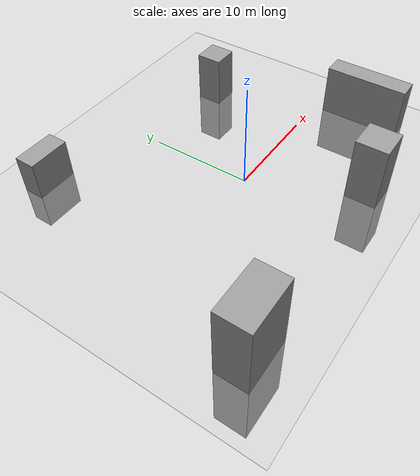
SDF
<?xml version="1.0" ?>
<sdf version="1.6">
  <world name="default">
    <include>
      <uri>model://sun</uri>
    </include>
    <include>
      <uri>model://ground_plane</uri>
    </include>

    <model name='building_1'>
      <pose frame=''>10 10 0 0 0 0</pose>
      <link name='link'>
        <collision name='collision'>
          <geometry>
            <box>
              <size>2.5 2.5 10</size>
            </box>
          </geometry>
        </collision>
        <visual name='visual'>
          <geometry>
            <box>
              <size>2.5 2.5 10</size>
            </box>
          </geometry>
          <material>
            <script>
              <uri>file://media/materials/scripts/gazebo.material</uri>
              <name>Gazebo/Grey</name>
            </script>
          </material>
        </visual>
      </link>
    </model>

    <model name='building_2'>
      <pose frame=''>-10 15 0 0 0 0</pose>
      <link name='link'>
        <collision name='collision'>
          <geometry>
            <box>
              <size>4 2 7.5</size>
            </box>
          </geometry>
        </collision>
        <visual name='visual'>
          <geometry>
            <box>
              <size>4 2 7.5</size>
            </box>
          </geometry>
          <material>
            <script>
              <uri>file://media/materials/scripts/gazebo.material</uri>
              <name>Gazebo/Grey</name>
            </script>
          </material>
        </visual>
      </link>
    </model>

    <model name='building_3'>
      <pose frame=''>5 -10 0 0 0 0</pose>
      <link name='link'>
        <collision name='collision'>
          <geometry>
            <box>
              <size>3 3 12.5</size>
            </box>
          </geometry>
        </collision>
        <visual name='visual'>
          <geometry>
            <box>
              <size>3 3 12.5</size>
            </box>
          </geometry>
          <material>
            <script>
              <uri>file://media/materials/scripts/gazebo.material</uri>
              <name>Gazebo/Grey</name>
            </script>
          </material>
        </visual>
      </link>
    </model>

    <model name='building_4'>
      <pose frame=''>-15 -10 0 0 0 0</pose>
      <link name='link'>
        <collision name='collision'>
          <geometry>
            <box>
              <size>5 3 15</size>
            </box>
          </geometry>
        </collision>
        <visual name='visual'>
          <geometry>
            <box>
              <size>5 3 15</size>
            </box>
          </geometry>
          <material>
            <script>
              <uri>file://media/materials/scripts/gazebo.material</uri>
              <name>Gazebo/Grey</name>
            </script>
          </material>
        </visual>
      </link>
    </model>

    <model name='building_5'>
      <pose frame=''>15 -5 0 0 0 0</pose>
      <link name='link'>
        <collision name='collision'>
          <geometry>
            <box>
              <size>2 8 10</size>
            </box>
          </geometry>
        </collision>
        <visual name='visual'>
          <geometry>
            <box>
              <size>2 8 10</size>
            </box>
          </geometry>
          <material>
            <script>
              <uri>file://media/materials/scripts/gazebo.material</uri>
              <name>Gazebo/Grey</name>
            </script>
          </material>
        </visual>
      </link>
    </model>

  </world>
</sdf>
